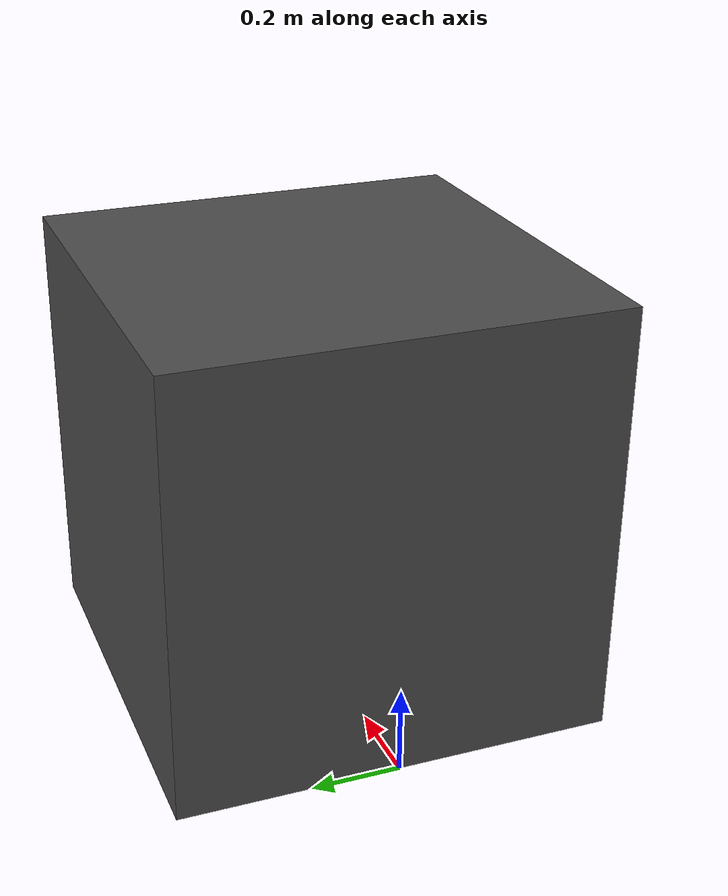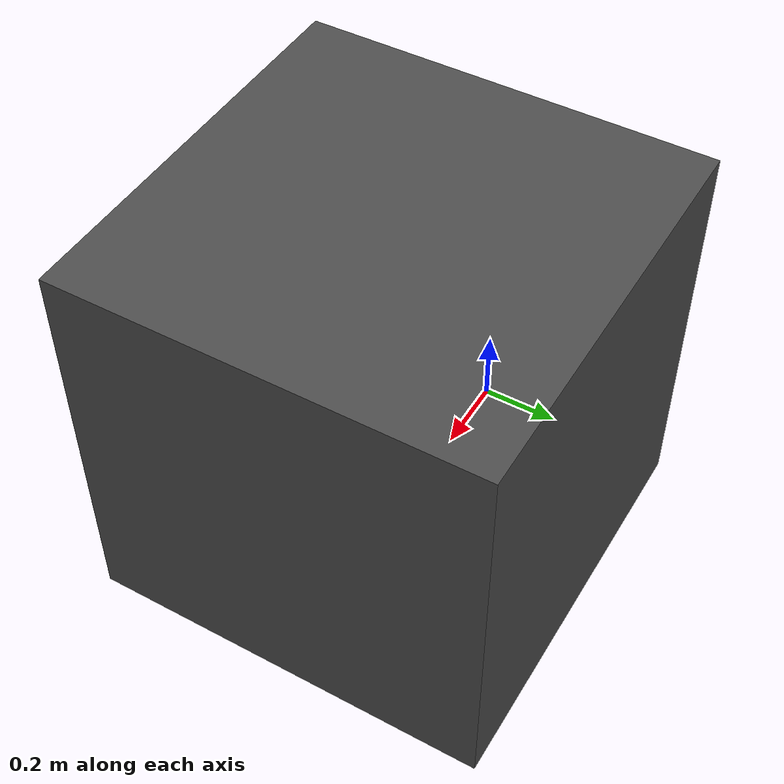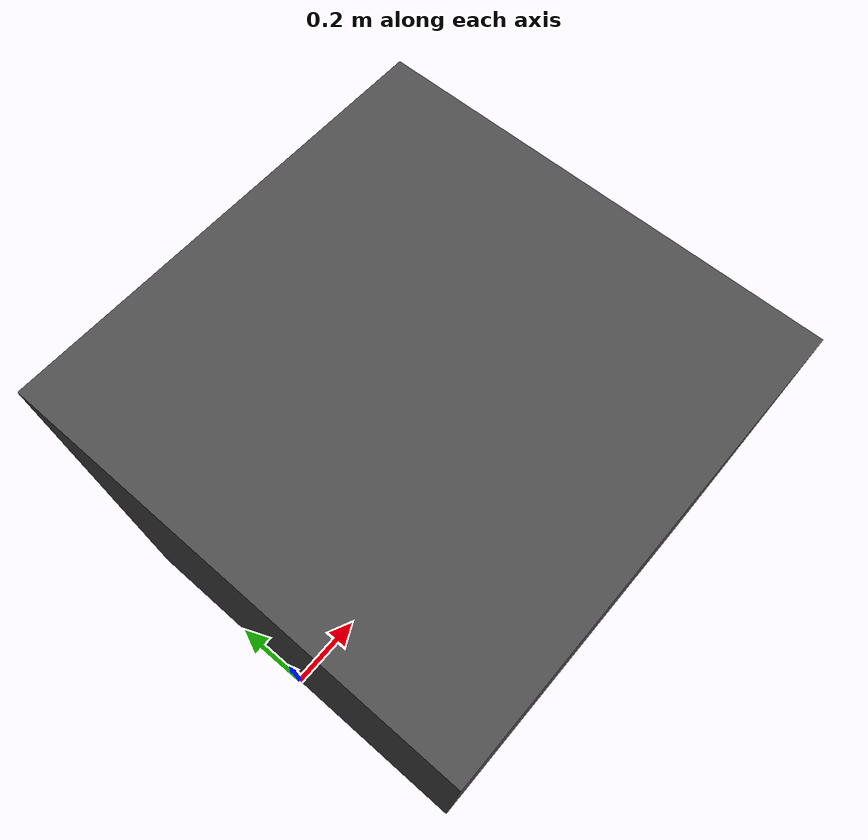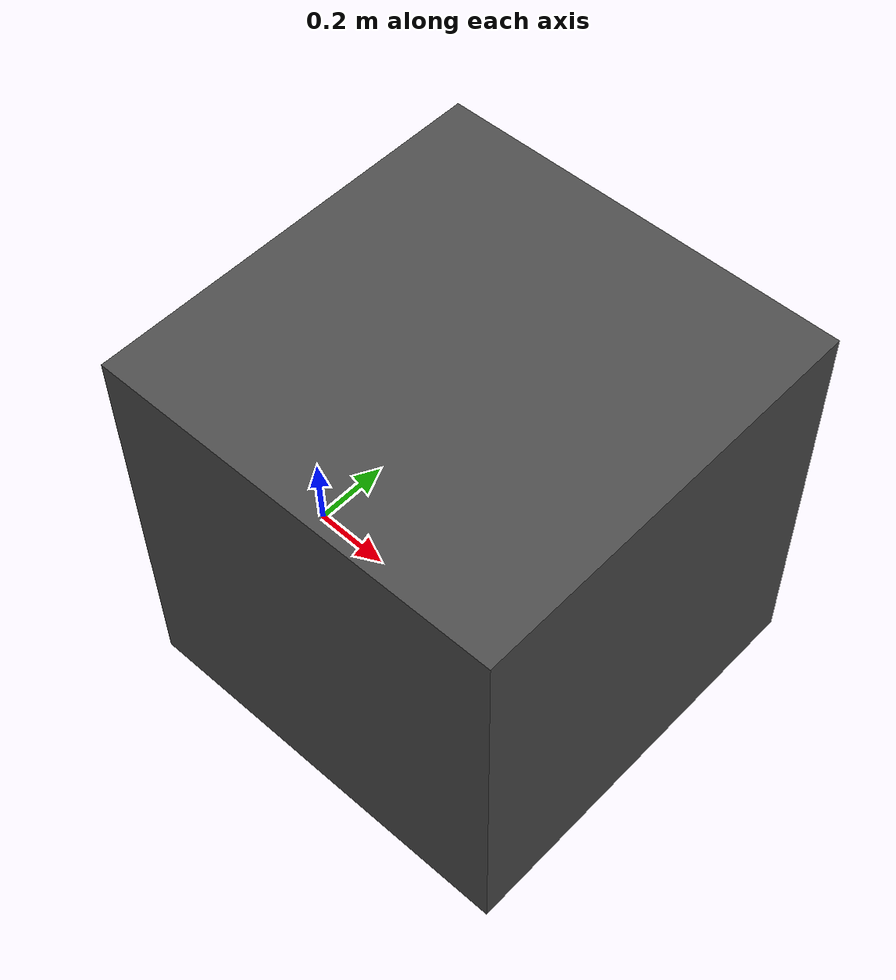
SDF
<?xml version="1.0" ?>
<sdf version="1.6">
  <world name="lights">
    <physics name="1ms" type="ignored">
      <max_step_size>0.001</max_step_size>
      <real_time_factor>1.0</real_time_factor>
    </physics>

    <scene>
      <ambient>0.4 0.4 0.4</ambient>
      <background>0.8 0.8 0.8</background>
      <grid>true</grid>
    </scene>

    <light type="directional" name="directional">
      <cast_shadows>true</cast_shadows>
      <pose>0 0 10 0 0 0</pose>
      <diffuse>0.8 0.8 0.8 1</diffuse>
      <specular>0.2 0.2 0.2 1</specular>
      <attenuation>
        <range>100</range>
        <constant>0.9</constant>
        <linear>0.01</linear>
        <quadratic>0.001</quadratic>
      </attenuation>
      <direction>0.5 0.2 -0.9</direction>
    </light>

    <model name="box">
      <pose>0 0 0.5 0 0 0</pose>
      <link name="box_link">
        <inertial>
          <inertia>
            <ixx>2</ixx>
            <ixy>0</ixy>
            <ixz>0</ixz>
            <iyy>2</iyy>
            <iyz>0</iyz>
            <izz>2</izz>
          </inertia>
          <mass>0.0</mass>
        </inertial>
        <collision name="box_collision">
          <pose>0 0.5 0.5 0 0 0</pose>
          <geometry>
            <box>
              <size>1 1 1</size>
            </box>
          </geometry>
        </collision>

        <visual name="box_visual">
          <pose>0.5 0 0 0 0 0</pose>
          <geometry>
            <box>
              <size>1 1 1</size>
            </box>
          </geometry>
          <material>
            <ambient>0.3 0.3 0.3 1</ambient>
            <diffuse>0.3 0.3 0.3 1</diffuse>
            <specular>0.3 0.5 0.3 1</specular>
          </material>
        </visual>

      </link>
    </model>
  </world>
</sdf>
